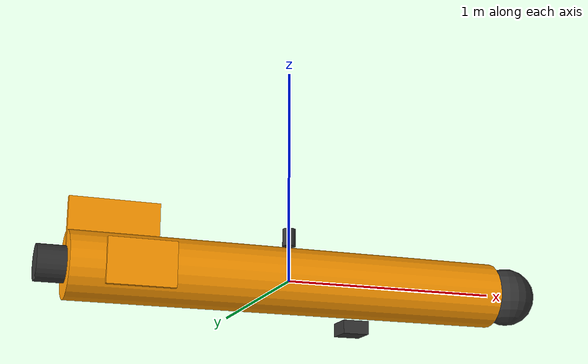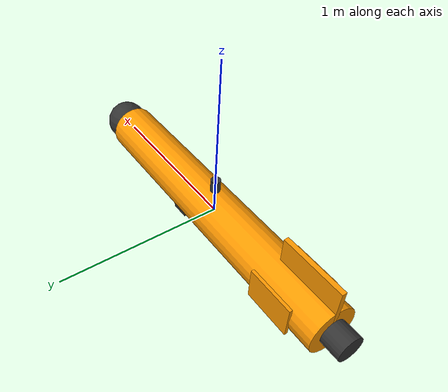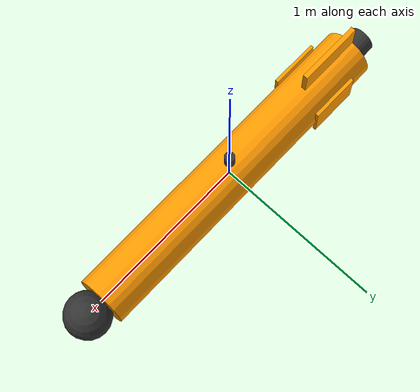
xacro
<?xml version="1.0"?>
<robot xmlns:xacro="http://www.ros.org/wiki/xacro" name="auv_robot">

  <!-- 机器人尺寸参数 -->
  <xacro:property name="PI" value="3.14159265359"/>
  <xacro:property name="hull_length" value="2.0"/>
  <xacro:property name="hull_radius" value="0.15"/>
  <xacro:property name="hull_mass" value="25.0"/>

  <!-- 材料定义 -->
  <material name="hull_orange">
    <color rgba="1.0 0.6 0.0 1.0"/>
  </material>

  <material name="sensor_black">
    <color rgba="0.2 0.2 0.2 1.0"/>
  </material>

  <!-- 主船体 -->
  <link name="base_link">
    <inertial>
      <mass value="${hull_mass}"/>
      <origin xyz="0 0 0" rpy="0 0 0"/>
      <inertia ixx="2.0" ixy="0.0" ixz="0.0"
               iyy="8.0" iyz="0.0"
               izz="8.0"/>
    </inertial>

    <visual name="hull_visual">
      <origin xyz="0 0 0" rpy="0 ${PI/2} 0"/>
      <geometry>
        <cylinder radius="${hull_radius}" length="${hull_length}"/>
      </geometry>
      <material name="hull_orange"/>
    </visual>

    <collision name="hull_collision">
      <origin xyz="0 0 0" rpy="0 ${PI/2} 0"/>
      <geometry>
        <cylinder radius="${hull_radius}" length="${hull_length}"/>
      </geometry>
    </collision>
  </link>

  <!-- 相机 -->
  <link name="camera_link">
    <inertial>
      <mass value="0.3"/>
      <origin xyz="0 0 0" rpy="0 0 0"/>
      <inertia ixx="0.001" ixy="0.0" ixz="0.0"
               iyy="0.001" iyz="0.0"
               izz="0.001"/>
    </inertial>

    <visual>
      <origin xyz="0 0 0" rpy="0 0 0"/>
      <geometry>
        <box size="0.08 0.12 0.08"/>
      </geometry>
      <material name="sensor_black"/>
    </visual>
  </link>

  <joint name="hull_to_camera" type="fixed">
    <parent link="base_link"/>
    <child link="camera_link"/>
    <origin xyz="0.8 0 0.05" rpy="0 0 0"/>
  </joint>

  <!-- 其他传感器连接 -->
  <link name="imu_link">
    <inertial>
      <mass value="0.1"/>
      <origin xyz="0 0 0" rpy="0 0 0"/>
      <inertia ixx="0.001" ixy="0.0" ixz="0.0"
               iyy="0.001" iyz="0.0"
               izz="0.001"/>
    </inertial>
    <visual>
      <origin xyz="0 0 0" rpy="0 0 0"/>
      <geometry>
        <box size="0.05 0.05 0.02"/>
      </geometry>
      <material name="sensor_black"/>
    </visual>
  </link>

  <joint name="hull_to_imu" type="fixed">
    <parent link="base_link"/>
    <child link="imu_link"/>
    <origin xyz="0 0 0" rpy="0 0 0"/>
  </joint>

  <!-- 简化的其他传感器 -->
  <link name="sonar_link">
    <inertial>
      <mass value="0.8"/>
      <origin xyz="0 0 0" rpy="0 0 0"/>
      <inertia ixx="0.01" ixy="0.0" ixz="0.0"
               iyy="0.01" iyz="0.0"
               izz="0.01"/>
    </inertial>
    <visual>
      <origin xyz="0 0 0" rpy="0 ${PI/2} 0"/>
      <geometry>
        <cylinder radius="0.06" length="0.15"/>
      </geometry>
      <material name="sensor_black"/>
    </visual>
  </link>

  <joint name="hull_to_sonar" type="fixed">
    <parent link="base_link"/>
    <child link="sonar_link"/>
    <origin xyz="0.6 0 -0.08" rpy="0 0 0"/>
  </joint>

  <link name="dvl_link">
    <inertial>
      <mass value="1.0"/>
      <origin xyz="0 0 0" rpy="0 0 0"/>
      <inertia ixx="0.01" ixy="0.0" ixz="0.0"
               iyy="0.01" iyz="0.0"
               izz="0.01"/>
    </inertial>
    <visual>
      <origin xyz="0 0 0" rpy="0 0 0"/>
      <geometry>
        <box size="0.12 0.12 0.06"/>
      </geometry>
      <material name="sensor_black"/>
    </visual>
  </link>

  <joint name="hull_to_dvl" type="fixed">
    <parent link="base_link"/>
    <child link="dvl_link"/>
    <origin xyz="0.3 0 -0.2" rpy="0 0 0"/>
  </joint>

  <link name="gps_link">
    <inertial>
      <mass value="0.2"/>
      <origin xyz="0 0 0" rpy="0 0 0"/>
      <inertia ixx="0.001" ixy="0.0" ixz="0.0"
               iyy="0.001" iyz="0.0"
               izz="0.001"/>
    </inertial>
    <visual>
      <origin xyz="0 0 0" rpy="0 0 0"/>
      <geometry>
        <cylinder radius="0.03" length="0.08"/>
      </geometry>
      <material name="sensor_black"/>
    </visual>
  </link>

  <joint name="hull_to_gps" type="fixed">
    <parent link="base_link"/>
    <child link="gps_link"/>
    <origin xyz="0 0 0.2" rpy="0 0 0"/>
  </joint>

  <!-- 控制鳍 -->
  <link name="dorsal_fin">
    <inertial>
      <mass value="0.5"/>
      <origin xyz="0 0 0" rpy="0 0 0"/>
      <inertia ixx="0.02" ixy="0.0" ixz="0.0"
               iyy="0.02" iyz="0.0"
               izz="0.02"/>
    </inertial>
    <visual>
      <origin xyz="0 0 0" rpy="0 0 0"/>
      <geometry>
        <box size="0.4 0.03 0.3"/>
      </geometry>
      <material name="hull_orange"/>
    </visual>
  </link>

  <joint name="hull_to_dorsal_fin" type="fixed">
    <parent link="base_link"/>
    <child link="dorsal_fin"/>
    <origin xyz="-0.8 0 0.15" rpy="0 0 0"/>
  </joint>

  <link name="left_fin">
    <inertial>
      <mass value="0.3"/>
      <origin xyz="0 0 0" rpy="0 0 0"/>
      <inertia ixx="0.01" ixy="0.0" ixz="0.0"
               iyy="0.01" iyz="0.0"
               izz="0.01"/>
    </inertial>
    <visual>
      <origin xyz="0 0 0" rpy="0 0 0"/>
      <geometry>
        <box size="0.3 0.02 0.2"/>
      </geometry>
      <material name="hull_orange"/>
    </visual>
  </link>

  <joint name="hull_to_left_fin" type="fixed">
    <parent link="base_link"/>
    <child link="left_fin"/>
    <origin xyz="-0.7 0.15 0" rpy="0 0 0"/>
  </joint>

  <link name="right_fin">
    <inertial>
      <mass value="0.3"/>
      <origin xyz="0 0 0" rpy="0 0 0"/>
      <inertia ixx="0.01" ixy="0.0" ixz="0.0"
               iyy="0.01" iyz="0.0"
               izz="0.01"/>
    </inertial>
    <visual>
      <origin xyz="0 0 0" rpy="0 0 0"/>
      <geometry>
        <box size="0.3 0.02 0.2"/>
      </geometry>
      <material name="hull_orange"/>
    </visual>
  </link>

  <joint name="hull_to_right_fin" type="fixed">
    <parent link="base_link"/>
    <child link="right_fin"/>
    <origin xyz="-0.7 -0.15 0" rpy="0 0 0"/>
  </joint>

  <link name="main_thruster">
    <inertial>
      <mass value="2.0"/>
      <origin xyz="0 0 0" rpy="0 0 0"/>
      <inertia ixx="0.05" ixy="0.0" ixz="0.0"
               iyy="0.05" iyz="0.0"
               izz="0.05"/>
    </inertial>
    <visual>
      <origin xyz="0 0 0" rpy="0 ${PI/2} 0"/>
      <geometry>
        <cylinder radius="0.08" length="0.25"/>
      </geometry>
      <material name="sensor_black"/>
    </visual>
  </link>

  <joint name="hull_to_main_thruster" type="fixed">
    <parent link="base_link"/>
    <child link="main_thruster"/>
    <origin xyz="-1.0 0 0" rpy="0 0 0"/>
  </joint>

  <link name="nose_cone">
    <inertial>
      <mass value="1.5"/>
      <origin xyz="0 0 0" rpy="0 0 0"/>
      <inertia ixx="0.1" ixy="0.0" ixz="0.0"
               iyy="0.1" iyz="0.0"
               izz="0.1"/>
    </inertial>
    <visual>
      <origin xyz="0 0 0" rpy="0 0 0"/>
      <geometry>
        <sphere radius="${hull_radius * 0.9}"/>
      </geometry>
      <material name="sensor_black"/>
    </visual>
  </link>

  <joint name="hull_to_nose" type="fixed">
    <parent link="base_link"/>
    <child link="nose_cone"/>
    <origin xyz="1.1 0 0" rpy="0 0 0"/>
  </joint>

  <!-- Gazebo 材质配置 -->
  <gazebo reference="base_link">
    <material>Gazebo/Orange</material>
  </gazebo>

  <gazebo reference="camera_link">
    <material>Gazebo/Black</material>
  </gazebo>

  <gazebo reference="nose_cone">
    <material>Gazebo/Black</material>
  </gazebo>

  <gazebo reference="dorsal_fin">
    <material>Gazebo/Orange</material>
  </gazebo>

  <gazebo reference="left_fin">
    <material>Gazebo/Orange</material>
  </gazebo>

  <gazebo reference="right_fin">
    <material>Gazebo/Orange</material>
  </gazebo>

  <gazebo reference="main_thruster">
    <material>Gazebo/Blue</material>
  </gazebo>

  <!-- 🔧 修复：恢复正确的planar_move插件配置 -->
  <gazebo>
    <plugin name="planar_move_controller" filename="libgazebo_ros_planar_move.so">
      <ros>
        <namespace>/</namespace>
      </ros>
      <command_topic>cmd_vel</command_topic>
      <odometry_topic>odom</odometry_topic>
      <odometry_frame>odom</odometry_frame>
      <robot_base_frame>base_link</robot_base_frame>
      <publish_rate>50.0</publish_rate>
      <publish_odom>true</publish_odom>
      <publish_tf>true</publish_tf>

      <!-- 🔧 关键：确保3D运动支持 -->
      <covariance_x>0.0001</covariance_x>
      <covariance_y>0.0001</covariance_y>
      <covariance_z>0.0001</covariance_z>
      <covariance_yaw>0.01</covariance_yaw>
    </plugin>
  </gazebo>

  <!-- 相机传感器 -->
  <gazebo reference="camera_link">
    <sensor type="camera" name="forward_camera">
      <update_rate>10.0</update_rate>
      <camera name="forward_camera">
        <horizontal_fov>1.396</horizontal_fov>
        <image>
          <width>640</width>
          <height>480</height>
          <format>R8G8B8</format>
        </image>
        <clip>
          <near>0.1</near>
          <far>50</far>
        </clip>
      </camera>
      <plugin name="camera_controller" filename="libgazebo_ros_camera.so">
        <ros>
          <namespace>/</namespace>
          <argument>--ros-args --remap image_raw:=/forward_camera/image_raw</argument>
          <argument>--ros-args --remap camera_info:=/forward_camera/camera_info</argument>
        </ros>
        <camera_name>forward_camera</camera_name>
        <frame_name>camera_link</frame_name>
      </plugin>
    </sensor>
  </gazebo>

  <!-- IMU 传感器 -->
  <gazebo reference="imu_link">
    <sensor name="imu_sensor" type="imu">
      <plugin filename="libgazebo_ros_imu_sensor.so" name="imu_plugin">
        <ros>
          <namespace>/</namespace>
          <argument>--ros-args --remap ~/out:=/imu/data</argument>
        </ros>
        <frame_name>imu_link</frame_name>
        <initial_orientation_as_reference>false</initial_orientation_as_reference>
      </plugin>
      <always_on>true</always_on>
      <update_rate>100</update_rate>
    </sensor>
  </gazebo>

</robot>
